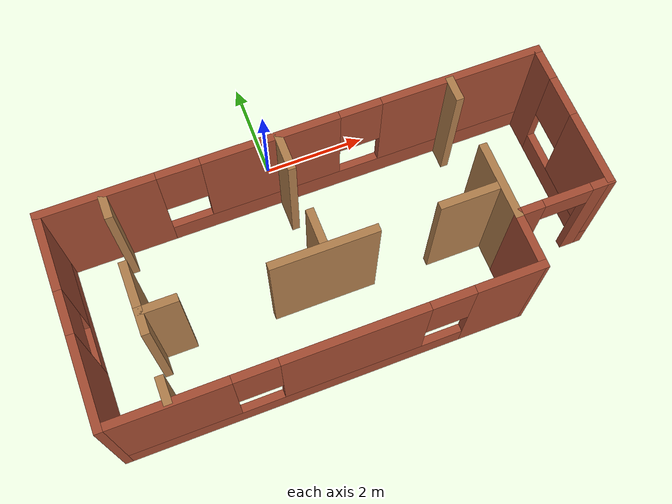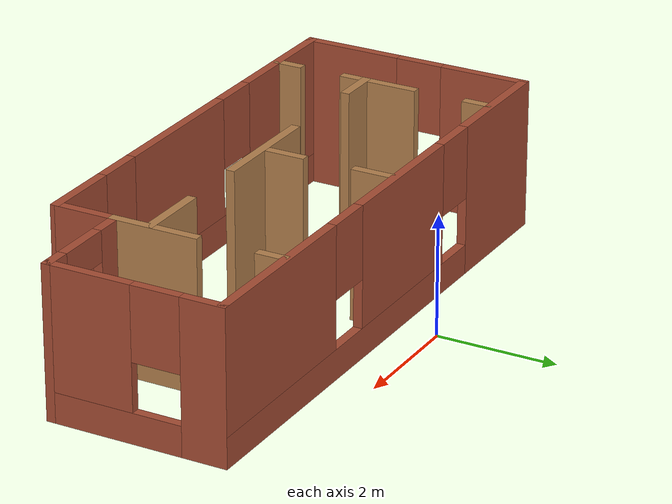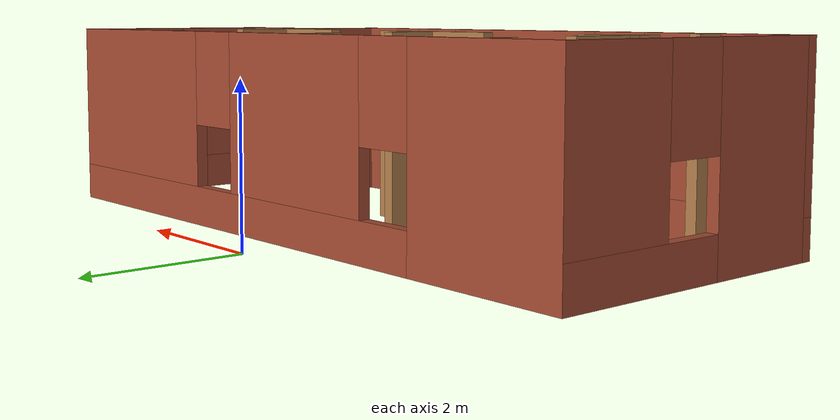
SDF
<?xml version='1.0'?>
<sdf version='1.7'>
  <model name='pipre_world'>
    <pose>0.416863 -2.30953 0 0 -0 0</pose>
    <link name='Wall_51'>
      <pose>-0.875 -2.23422 0 0 -0 3.14159</pose>
      <visual name='Wall_51_Visual_0'>
        <pose>-3.22608 0 1.25 0 -0 0</pose>
        <geometry>
          <box>
            <size>1.29784 0.15 2.5</size>
          </box>
        </geometry>
        <material>
          <script>
            <uri>file://media/materials/scripts/gazebo.material</uri>
            <name>Gazebo/Bricks</name>
          </script>
          <ambient>1 1 1 1</ambient>
        </material>
        <meta>
          <layer>0</layer>
        </meta>
      </visual>
      <collision name='Wall_51_Collision_0'>
        <geometry>
          <box>
            <size>1.29784 0.15 2.5</size>
          </box>
        </geometry>
        <pose>-3.22608 0 1.25 0 -0 0</pose>
      </collision>
      <visual name='Wall_51_Visual_1'>
        <pose>0.648921 0 0.25 0 -0 0</pose>
        <geometry>
          <box>
            <size>6.45216 0.15 0.5</size>
          </box>
        </geometry>
        <material>
          <script>
            <uri>file://media/materials/scripts/gazebo.material</uri>
            <name>Gazebo/Bricks</name>
          </script>
          <ambient>1 1 1 1</ambient>
        </material>
        <meta>
          <layer>0</layer>
        </meta>
      </visual>
      <collision name='Wall_51_Collision_1'>
        <geometry>
          <box>
            <size>6.45216 0.15 0.5</size>
          </box>
        </geometry>
        <pose>0.648921 0 0.25 0 -0 0</pose>
      </collision>
      <visual name='Wall_51_Visual_2'>
        <pose>-0.472158 0 1.5 0 -0 0</pose>
        <geometry>
          <box>
            <size>2.61 0.15 2</size>
          </box>
        </geometry>
        <material>
          <script>
            <uri>file://media/materials/scripts/gazebo.material</uri>
            <name>Gazebo/Bricks</name>
          </script>
          <ambient>1 1 1 1</ambient>
        </material>
        <meta>
          <layer>0</layer>
        </meta>
      </visual>
      <collision name='Wall_51_Collision_2'>
        <geometry>
          <box>
            <size>2.61 0.15 2</size>
          </box>
        </geometry>
        <pose>-0.472158 0 1.5 0 -0 0</pose>
      </collision>
      <visual name='Wall_51_Visual_3'>
        <pose>2.75392 0 1.5 0 -0 0</pose>
        <geometry>
          <box>
            <size>2.24216 0.15 2</size>
          </box>
        </geometry>
        <material>
          <script>
            <uri>file://media/materials/scripts/gazebo.material</uri>
            <name>Gazebo/Bricks</name>
          </script>
          <ambient>1 1 1 1</ambient>
        </material>
        <meta>
          <layer>0</layer>
        </meta>
      </visual>
      <collision name='Wall_51_Collision_3'>
        <geometry>
          <box>
            <size>2.24216 0.15 2</size>
          </box>
        </geometry>
        <pose>2.75392 0 1.5 0 -0 0</pose>
      </collision>
      <visual name='Wall_51_Visual_4'>
        <pose>-2.17716 0 1.9 0 -0 0</pose>
        <geometry>
          <box>
            <size>0.8 0.15 1.2</size>
          </box>
        </geometry>
        <material>
          <script>
            <uri>file://media/materials/scripts/gazebo.material</uri>
            <name>Gazebo/Bricks</name>
          </script>
          <ambient>1 1 1 1</ambient>
        </material>
        <meta>
          <layer>0</layer>
        </meta>
      </visual>
      <collision name='Wall_51_Collision_4'>
        <geometry>
          <box>
            <size>0.8 0.15 1.2</size>
          </box>
        </geometry>
        <pose>-2.17716 0 1.9 0 -0 0</pose>
      </collision>
      <visual name='Wall_51_Visual_5'>
        <pose>1.23284 0 1.9 0 -0 0</pose>
        <geometry>
          <box>
            <size>0.8 0.15 1.2</size>
          </box>
        </geometry>
        <material>
          <script>
            <uri>file://media/materials/scripts/gazebo.material</uri>
            <name>Gazebo/Bricks</name>
          </script>
          <ambient>1 1 1 1</ambient>
        </material>
        <meta>
          <layer>0</layer>
        </meta>
      </visual>
      <collision name='Wall_51_Collision_5'>
        <geometry>
          <box>
            <size>0.8 0.15 1.2</size>
          </box>
        </geometry>
        <pose>1.23284 0 1.9 0 -0 0</pose>
      </collision>
    </link>
    <link name='Wall_54'>
      <collision name='Wall_54_Collision'>
        <geometry>
          <box>
            <size>2 0.15 2.5</size>
          </box>
        </geometry>
        <pose>0 0 1.25 0 -0 0</pose>
      </collision>
      <visual name='Wall_54_Visual'>
        <pose>0 0 1.25 0 -0 0</pose>
        <geometry>
          <box>
            <size>2 0.15 2.5</size>
          </box>
        </geometry>
        <material>
          <script>
            <uri>file://media/materials/scripts/gazebo.material</uri>
            <name>Gazebo/Wood</name>
          </script>
          <ambient>1 1 1 1</ambient>
        </material>
        <meta>
          <layer>0</layer>
        </meta>
      </visual>
      <pose>-0.341585 -0.647461 0 0 -0 0</pose>
    </link>
    <link name='Wall_56'>
      <collision name='Wall_56_Collision'>
        <geometry>
          <box>
            <size>0.75 0.15 2.5</size>
          </box>
        </geometry>
        <pose>0 0 1.25 0 -0 0</pose>
      </collision>
      <visual name='Wall_56_Visual'>
        <pose>0 0 1.25 0 -0 0</pose>
        <geometry>
          <box>
            <size>0.75 0.15 2.5</size>
          </box>
        </geometry>
        <material>
          <script>
            <uri>file://media/materials/scripts/gazebo.material</uri>
            <name>Gazebo/Wood</name>
          </script>
          <ambient>1 1 1 1</ambient>
        </material>
        <meta>
          <layer>0</layer>
        </meta>
      </visual>
      <pose>-3.24406 -0.626726 0 0 -0 3.14159</pose>
    </link>
    <link name='Wall_57'>
      <collision name='Wall_57_Collision'>
        <geometry>
          <box>
            <size>0.5 0.15 2.5</size>
          </box>
        </geometry>
        <pose>0 0 1.25 0 -0 0</pose>
      </collision>
      <visual name='Wall_57_Visual'>
        <pose>0 0 1.25 0 -0 0</pose>
        <geometry>
          <box>
            <size>0.5 0.15 2.5</size>
          </box>
        </geometry>
        <material>
          <script>
            <uri>file://media/materials/scripts/gazebo.material</uri>
            <name>Gazebo/Wood</name>
          </script>
          <ambient>1 1 1 1</ambient>
        </material>
        <meta>
          <layer>0</layer>
        </meta>
      </visual>
      <pose>-3.54406 -0.801727 0 0 -0 -1.5708</pose>
    </link>
    <link name='Wall_59'>
      <collision name='Wall_59_Collision'>
        <geometry>
          <box>
            <size>0.5 0.15 2.5</size>
          </box>
        </geometry>
        <pose>0 0 1.25 0 -0 0</pose>
      </collision>
      <visual name='Wall_59_Visual'>
        <pose>0 0 1.25 0 -0 0</pose>
        <geometry>
          <box>
            <size>0.5 0.15 2.5</size>
          </box>
        </geometry>
        <material>
          <script>
            <uri>file://media/materials/scripts/gazebo.material</uri>
            <name>Gazebo/Wood</name>
          </script>
          <ambient>1 1 1 1</ambient>
        </material>
        <meta>
          <layer>0</layer>
        </meta>
      </visual>
      <pose>-3.54571 -2.01762 0 0 -0 1.5708</pose>
    </link>
    <link name='Wall_61'>
      <pose>-4.675 -0.309224 0 0 -0 1.5708</pose>
      <visual name='Wall_61_Visual_0'>
        <pose>-1.15365 0 1.25 0 -0 0</pose>
        <geometry>
          <box>
            <size>1.6927 0.15 2.5</size>
          </box>
        </geometry>
        <material>
          <script>
            <uri>file://media/materials/scripts/gazebo.material</uri>
            <name>Gazebo/Bricks</name>
          </script>
          <ambient>1 1 1 1</ambient>
        </material>
        <meta>
          <layer>0</layer>
        </meta>
      </visual>
      <collision name='Wall_61_Collision_0'>
        <geometry>
          <box>
            <size>1.6927 0.15 2.5</size>
          </box>
        </geometry>
        <pose>-1.15365 0 1.25 0 -0 0</pose>
      </collision>
      <visual name='Wall_61_Visual_1'>
        <pose>0.846348 0 0.25 0 -0 0</pose>
        <geometry>
          <box>
            <size>2.3073 0.15 0.5</size>
          </box>
        </geometry>
        <material>
          <script>
            <uri>file://media/materials/scripts/gazebo.material</uri>
            <name>Gazebo/Bricks</name>
          </script>
          <ambient>1 1 1 1</ambient>
        </material>
        <meta>
          <layer>0</layer>
        </meta>
      </visual>
      <collision name='Wall_61_Collision_1'>
        <geometry>
          <box>
            <size>2.3073 0.15 0.5</size>
          </box>
        </geometry>
        <pose>0.846348 0 0.25 0 -0 0</pose>
      </collision>
      <visual name='Wall_61_Visual_2'>
        <pose>1.24635 0 1.5 0 -0 0</pose>
        <geometry>
          <box>
            <size>1.5073 0.15 2</size>
          </box>
        </geometry>
        <material>
          <script>
            <uri>file://media/materials/scripts/gazebo.material</uri>
            <name>Gazebo/Bricks</name>
          </script>
          <ambient>1 1 1 1</ambient>
        </material>
        <meta>
          <layer>0</layer>
        </meta>
      </visual>
      <collision name='Wall_61_Collision_2'>
        <geometry>
          <box>
            <size>1.5073 0.15 2</size>
          </box>
        </geometry>
        <pose>1.24635 0 1.5 0 -0 0</pose>
      </collision>
      <visual name='Wall_61_Visual_3'>
        <pose>0.092696 0 1.9 0 -0 0</pose>
        <geometry>
          <box>
            <size>0.8 0.15 1.2</size>
          </box>
        </geometry>
        <material>
          <script>
            <uri>file://media/materials/scripts/gazebo.material</uri>
            <name>Gazebo/Bricks</name>
          </script>
          <ambient>1 1 1 1</ambient>
        </material>
        <meta>
          <layer>0</layer>
        </meta>
      </visual>
      <collision name='Wall_61_Collision_3'>
        <geometry>
          <box>
            <size>0.8 0.15 1.2</size>
          </box>
        </geometry>
        <pose>0.092696 0 1.9 0 -0 0</pose>
      </collision>
    </link>
    <link name='Wall_62'>
      <pose>0 1.61578 0 0 -0 0</pose>
      <visual name='Wall_62_Visual_0'>
        <pose>-3.66392 0 1.25 0 -0 0</pose>
        <geometry>
          <box>
            <size>2.17216 0.15 2.5</size>
          </box>
        </geometry>
        <material>
          <script>
            <uri>file://media/materials/scripts/gazebo.material</uri>
            <name>Gazebo/Bricks</name>
          </script>
          <ambient>1 1 1 1</ambient>
        </material>
        <meta>
          <layer>0</layer>
        </meta>
      </visual>
      <collision name='Wall_62_Collision_0'>
        <geometry>
          <box>
            <size>2.17216 0.15 2.5</size>
          </box>
        </geometry>
        <pose>-3.66392 0 1.25 0 -0 0</pose>
      </collision>
      <visual name='Wall_62_Visual_1'>
        <pose>1.08608 0 0.25 0 -0 0</pose>
        <geometry>
          <box>
            <size>7.32784 0.15 0.5</size>
          </box>
        </geometry>
        <material>
          <script>
            <uri>file://media/materials/scripts/gazebo.material</uri>
            <name>Gazebo/Bricks</name>
          </script>
          <ambient>1 1 1 1</ambient>
        </material>
        <meta>
          <layer>0</layer>
        </meta>
      </visual>
      <collision name='Wall_62_Collision_1'>
        <geometry>
          <box>
            <size>7.32784 0.15 0.5</size>
          </box>
        </geometry>
        <pose>1.08608 0 0.25 0 -0 0</pose>
      </collision>
      <visual name='Wall_62_Visual_2'>
        <pose>-0.482842 0 1.5 0 -0 0</pose>
        <geometry>
          <box>
            <size>2.59 0.15 2</size>
          </box>
        </geometry>
        <material>
          <script>
            <uri>file://media/materials/scripts/gazebo.material</uri>
            <name>Gazebo/Bricks</name>
          </script>
          <ambient>1 1 1 1</ambient>
        </material>
        <meta>
          <layer>0</layer>
        </meta>
      </visual>
      <collision name='Wall_62_Collision_2'>
        <geometry>
          <box>
            <size>2.59 0.15 2</size>
          </box>
        </geometry>
        <pose>-0.482842 0 1.5 0 -0 0</pose>
      </collision>
      <visual name='Wall_62_Visual_3'>
        <pose>3.18108 0 1.5 0 -0 0</pose>
        <geometry>
          <box>
            <size>3.13784 0.15 2</size>
          </box>
        </geometry>
        <material>
          <script>
            <uri>file://media/materials/scripts/gazebo.material</uri>
            <name>Gazebo/Bricks</name>
          </script>
          <ambient>1 1 1 1</ambient>
        </material>
        <meta>
          <layer>0</layer>
        </meta>
      </visual>
      <collision name='Wall_62_Collision_3'>
        <geometry>
          <box>
            <size>3.13784 0.15 2</size>
          </box>
        </geometry>
        <pose>3.18108 0 1.5 0 -0 0</pose>
      </collision>
      <visual name='Wall_62_Visual_4'>
        <pose>-2.17784 0 1.9 0 -0 0</pose>
        <geometry>
          <box>
            <size>0.8 0.15 1.2</size>
          </box>
        </geometry>
        <material>
          <script>
            <uri>file://media/materials/scripts/gazebo.material</uri>
            <name>Gazebo/Bricks</name>
          </script>
          <ambient>1 1 1 1</ambient>
        </material>
        <meta>
          <layer>0</layer>
        </meta>
      </visual>
      <collision name='Wall_62_Collision_4'>
        <geometry>
          <box>
            <size>0.8 0.15 1.2</size>
          </box>
        </geometry>
        <pose>-2.17784 0 1.9 0 -0 0</pose>
      </collision>
      <visual name='Wall_62_Visual_5'>
        <pose>1.21216 0 1.9 0 -0 0</pose>
        <geometry>
          <box>
            <size>0.8 0.15 1.2</size>
          </box>
        </geometry>
        <material>
          <script>
            <uri>file://media/materials/scripts/gazebo.material</uri>
            <name>Gazebo/Bricks</name>
          </script>
          <ambient>1 1 1 1</ambient>
        </material>
        <meta>
          <layer>0</layer>
        </meta>
      </visual>
      <collision name='Wall_62_Collision_5'>
        <geometry>
          <box>
            <size>0.8 0.15 1.2</size>
          </box>
        </geometry>
        <pose>1.21216 0 1.9 0 -0 0</pose>
      </collision>
    </link>
    <link name='Wall_63'>
      <pose>4.675 0.190776 0 0 -0 -1.5708</pose>
      <visual name='Wall_63_Visual_0'>
        <pose>-1.13135 0 1.25 0 -0 0</pose>
        <geometry>
          <box>
            <size>0.737303 0.15 2.5</size>
          </box>
        </geometry>
        <material>
          <script>
            <uri>file://media/materials/scripts/gazebo.material</uri>
            <name>Gazebo/Bricks</name>
          </script>
          <ambient>1 1 1 1</ambient>
        </material>
        <meta>
          <layer>0</layer>
        </meta>
      </visual>
      <collision name='Wall_63_Collision_0'>
        <geometry>
          <box>
            <size>0.737303 0.15 2.5</size>
          </box>
        </geometry>
        <pose>-1.13135 0 1.25 0 -0 0</pose>
      </collision>
      <visual name='Wall_63_Visual_1'>
        <pose>0.368652 0 0.25 0 -0 0</pose>
        <geometry>
          <box>
            <size>2.2627 0.15 0.5</size>
          </box>
        </geometry>
        <material>
          <script>
            <uri>file://media/materials/scripts/gazebo.material</uri>
            <name>Gazebo/Bricks</name>
          </script>
          <ambient>1 1 1 1</ambient>
        </material>
        <meta>
          <layer>0</layer>
        </meta>
      </visual>
      <collision name='Wall_63_Collision_1'>
        <geometry>
          <box>
            <size>2.2627 0.15 0.5</size>
          </box>
        </geometry>
        <pose>0.368652 0 0.25 0 -0 0</pose>
      </collision>
      <visual name='Wall_63_Visual_2'>
        <pose>0.768652 0 1.5 0 -0 0</pose>
        <geometry>
          <box>
            <size>1.4627 0.15 2</size>
          </box>
        </geometry>
        <material>
          <script>
            <uri>file://media/materials/scripts/gazebo.material</uri>
            <name>Gazebo/Bricks</name>
          </script>
          <ambient>1 1 1 1</ambient>
        </material>
        <meta>
          <layer>0</layer>
        </meta>
      </visual>
      <collision name='Wall_63_Collision_2'>
        <geometry>
          <box>
            <size>1.4627 0.15 2</size>
          </box>
        </geometry>
        <pose>0.768652 0 1.5 0 -0 0</pose>
      </collision>
      <visual name='Wall_63_Visual_3'>
        <pose>-0.362697 0 1.9 0 -0 0</pose>
        <geometry>
          <box>
            <size>0.8 0.15 1.2</size>
          </box>
        </geometry>
        <material>
          <script>
            <uri>file://media/materials/scripts/gazebo.material</uri>
            <name>Gazebo/Bricks</name>
          </script>
          <ambient>1 1 1 1</ambient>
        </material>
        <meta>
          <layer>0</layer>
        </meta>
      </visual>
      <collision name='Wall_63_Collision_3'>
        <geometry>
          <box>
            <size>0.8 0.15 1.2</size>
          </box>
        </geometry>
        <pose>-0.362697 0 1.9 0 -0 0</pose>
      </collision>
    </link>
    <link name='Wall_65'>
      <pose>3.875 -1.23422 0 0 -0 3.14159</pose>
      <visual name='Wall_65_Visual_0'>
        <pose>-0.656079 0 1.25 0 -0 0</pose>
        <geometry>
          <box>
            <size>0.437842 0.15 2.5</size>
          </box>
        </geometry>
        <material>
          <script>
            <uri>file://media/materials/scripts/gazebo.material</uri>
            <name>Gazebo/Bricks</name>
          </script>
          <ambient>1 1 1 1</ambient>
        </material>
        <meta>
          <layer>0</layer>
        </meta>
      </visual>
      <collision name='Wall_65_Collision_0'>
        <geometry>
          <box>
            <size>0.437842 0.15 2.5</size>
          </box>
        </geometry>
        <pose>-0.656079 0 1.25 0 -0 0</pose>
      </collision>
      <visual name='Wall_65_Visual_1'>
        <pose>0.668921 0 1.25 0 -0 0</pose>
        <geometry>
          <box>
            <size>0.412158 0.15 2.5</size>
          </box>
        </geometry>
        <material>
          <script>
            <uri>file://media/materials/scripts/gazebo.material</uri>
            <name>Gazebo/Bricks</name>
          </script>
          <ambient>1 1 1 1</ambient>
        </material>
        <meta>
          <layer>0</layer>
        </meta>
      </visual>
      <collision name='Wall_65_Collision_1'>
        <geometry>
          <box>
            <size>0.412158 0.15 2.5</size>
          </box>
        </geometry>
        <pose>0.668921 0 1.25 0 -0 0</pose>
      </collision>
      <visual name='Wall_65_Visual_2'>
        <pose>0.012842 0 2.25 0 -0 0</pose>
        <geometry>
          <box>
            <size>0.9 0.15 0.5</size>
          </box>
        </geometry>
        <material>
          <script>
            <uri>file://media/materials/scripts/gazebo.material</uri>
            <name>Gazebo/Bricks</name>
          </script>
          <ambient>1 1 1 1</ambient>
        </material>
        <meta>
          <layer>0</layer>
        </meta>
      </visual>
      <collision name='Wall_65_Collision_2'>
        <geometry>
          <box>
            <size>0.9 0.15 0.5</size>
          </box>
        </geometry>
        <pose>0.012842 0 2.25 0 -0 0</pose>
      </collision>
    </link>
    <link name='Wall_67'>
      <collision name='Wall_67_Collision'>
        <geometry>
          <box>
            <size>1.14267 0.15 2.5</size>
          </box>
        </geometry>
        <pose>0 0 1.25 0 -0 0</pose>
      </collision>
      <visual name='Wall_67_Visual'>
        <pose>0 0 1.25 0 -0 0</pose>
        <geometry>
          <box>
            <size>1.14267 0.15 2.5</size>
          </box>
        </geometry>
        <material>
          <script>
            <uri>file://media/materials/scripts/gazebo.material</uri>
            <name>Gazebo/Bricks</name>
          </script>
          <ambient>1 1 1 1</ambient>
        </material>
        <meta>
          <layer>0</layer>
        </meta>
      </visual>
      <pose>2.92702 -1.73789 0 0 -0 1.56673</pose>
    </link>
    <link name='Wall_69'>
      <collision name='Wall_69_Collision'>
        <geometry>
          <box>
            <size>1.5 0.15 2.5</size>
          </box>
        </geometry>
        <pose>0 0 1.25 0 -0 0</pose>
      </collision>
      <visual name='Wall_69_Visual'>
        <pose>0 0 1.25 0 -0 0</pose>
        <geometry>
          <box>
            <size>1.5 0.15 2.5</size>
          </box>
        </geometry>
        <material>
          <script>
            <uri>file://media/materials/scripts/gazebo.material</uri>
            <name>Gazebo/Wood</name>
          </script>
          <ambient>1 1 1 1</ambient>
        </material>
        <meta>
          <layer>0</layer>
        </meta>
      </visual>
      <pose>2.92904 -0.566559 0 0 -0 1.5708</pose>
    </link>
    <link name='Wall_71'>
      <collision name='Wall_71_Collision'>
        <geometry>
          <box>
            <size>0.5 0.15 2.5</size>
          </box>
        </geometry>
        <pose>0 0 1.25 0 -0 0</pose>
      </collision>
      <visual name='Wall_71_Visual'>
        <pose>0 0 1.25 0 -0 0</pose>
        <geometry>
          <box>
            <size>0.5 0.15 2.5</size>
          </box>
        </geometry>
        <material>
          <script>
            <uri>file://media/materials/scripts/gazebo.material</uri>
            <name>Gazebo/Wood</name>
          </script>
          <ambient>1 1 1 1</ambient>
        </material>
        <meta>
          <layer>0</layer>
        </meta>
      </visual>
      <pose>2.93492 1.38964 0 0 -0 -1.5708</pose>
    </link>
    <link name='Wall_73'>
      <collision name='Wall_73_Collision'>
        <geometry>
          <box>
            <size>1.25 0.15 2.5</size>
          </box>
        </geometry>
        <pose>0 0 1.25 0 -0 0</pose>
      </collision>
      <visual name='Wall_73_Visual'>
        <pose>0 0 1.25 0 -0 0</pose>
        <geometry>
          <box>
            <size>1.25 0.15 2.5</size>
          </box>
        </geometry>
        <material>
          <script>
            <uri>file://media/materials/scripts/gazebo.material</uri>
            <name>Gazebo/Wood</name>
          </script>
          <ambient>1 1 1 1</ambient>
        </material>
        <meta>
          <layer>0</layer>
        </meta>
      </visual>
      <pose>2.36858 -0.645886 0 0 -0 0</pose>
    </link>
    <link name='Wall_75'>
      <collision name='Wall_75_Collision'>
        <geometry>
          <box>
            <size>1 0.15 2.5</size>
          </box>
        </geometry>
        <pose>0 0 1.25 0 -0 0</pose>
      </collision>
      <visual name='Wall_75_Visual'>
        <pose>0 0 1.25 0 -0 0</pose>
        <geometry>
          <box>
            <size>1 0.15 2.5</size>
          </box>
        </geometry>
        <material>
          <script>
            <uri>file://media/materials/scripts/gazebo.material</uri>
            <name>Gazebo/Wood</name>
          </script>
          <ambient>1 1 1 1</ambient>
        </material>
        <meta>
          <layer>0</layer>
        </meta>
      </visual>
      <pose>-3.54406 -0.201726 0 0 -0 1.5708</pose>
    </link>
    <link name='Wall_77'>
      <collision name='Wall_77_Collision'>
        <geometry>
          <box>
            <size>0.5 0.15 2.5</size>
          </box>
        </geometry>
        <pose>0 0 1.25 0 -0 0</pose>
      </collision>
      <visual name='Wall_77_Visual'>
        <pose>0 0 1.25 0 -0 0</pose>
        <geometry>
          <box>
            <size>0.5 0.15 2.5</size>
          </box>
        </geometry>
        <material>
          <script>
            <uri>file://media/materials/scripts/gazebo.material</uri>
            <name>Gazebo/Wood</name>
          </script>
          <ambient>1 1 1 1</ambient>
        </material>
        <meta>
          <layer>0</layer>
        </meta>
      </visual>
      <pose>-3.53458 1.38572 0 0 -0 -1.5708</pose>
    </link>
    <link name='Wall_79'>
      <collision name='Wall_79_Collision'>
        <geometry>
          <box>
            <size>0.75 0.15 2.5</size>
          </box>
        </geometry>
        <pose>0 0 1.25 0 -0 0</pose>
      </collision>
      <visual name='Wall_79_Visual'>
        <pose>0 0 1.25 0 -0 0</pose>
        <geometry>
          <box>
            <size>0.75 0.15 2.5</size>
          </box>
        </geometry>
        <material>
          <script>
            <uri>file://media/materials/scripts/gazebo.material</uri>
            <name>Gazebo/Wood</name>
          </script>
          <ambient>1 1 1 1</ambient>
        </material>
        <meta>
          <layer>0</layer>
        </meta>
      </visual>
      <pose>-0.325899 -0.282785 0 0 -0 1.5708</pose>
    </link>
    <link name='Wall_81'>
      <collision name='Wall_81_Collision'>
        <geometry>
          <box>
            <size>0.75 0.15 2.5</size>
          </box>
        </geometry>
        <pose>0 0 1.25 0 -0 0</pose>
      </collision>
      <visual name='Wall_81_Visual'>
        <pose>0 0 1.25 0 -0 0</pose>
        <geometry>
          <box>
            <size>0.75 0.15 2.5</size>
          </box>
        </geometry>
        <material>
          <script>
            <uri>file://media/materials/scripts/gazebo.material</uri>
            <name>Gazebo/Wood</name>
          </script>
          <ambient>1 1 1 1</ambient>
        </material>
        <meta>
          <layer>0</layer>
        </meta>
      </visual>
      <pose>-0.339049 1.27387 0 0 -0 -1.5708</pose>
    </link>
    <static>1</static>
  </model>
</sdf>
